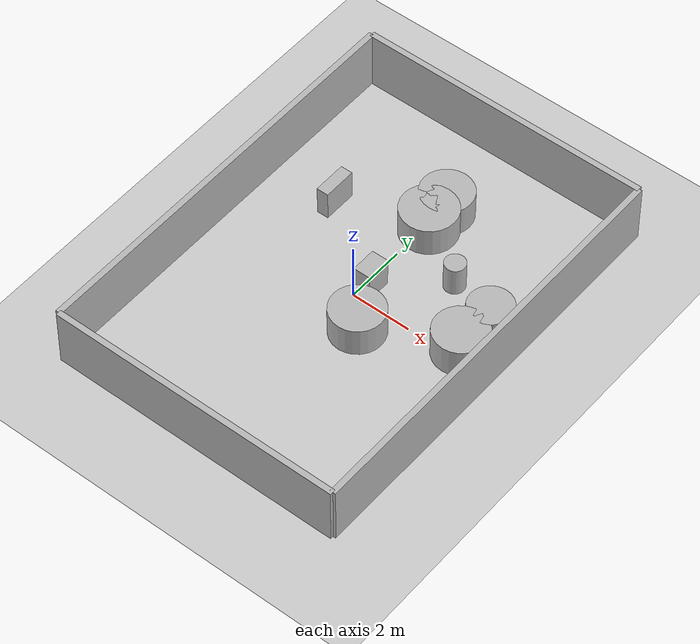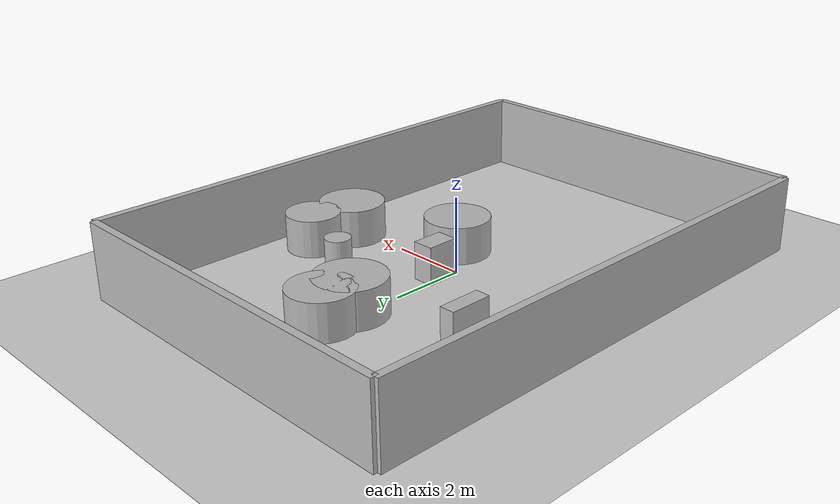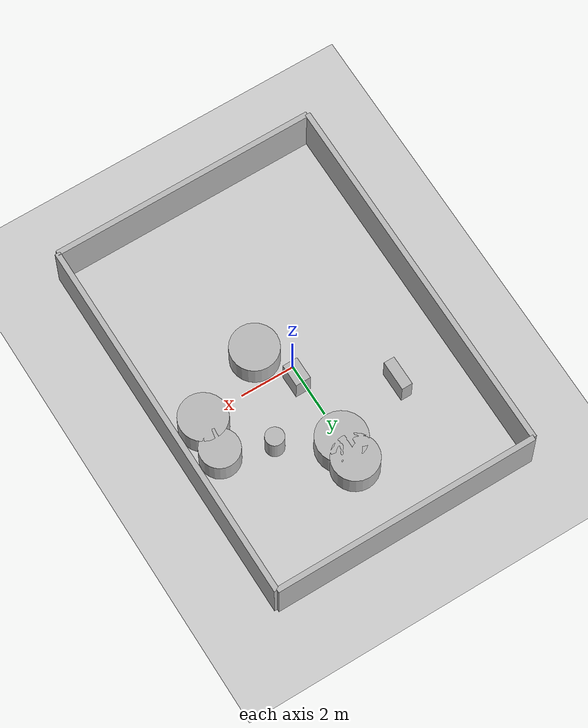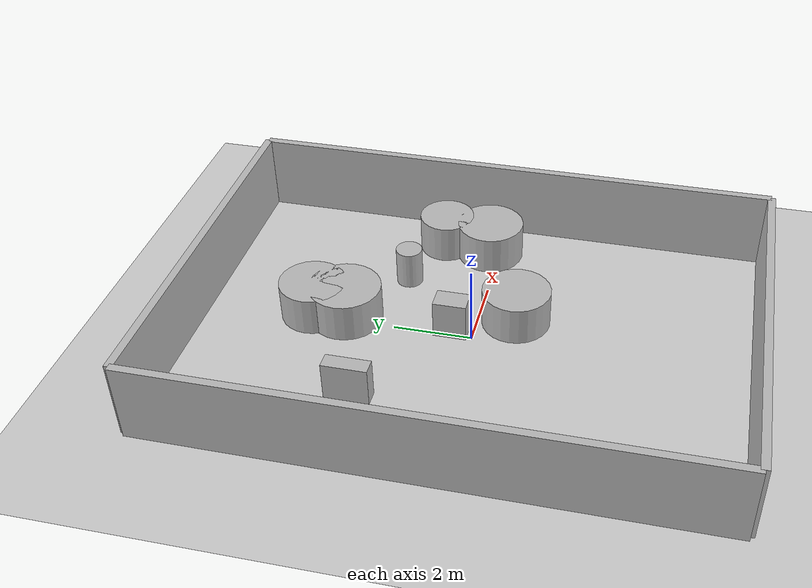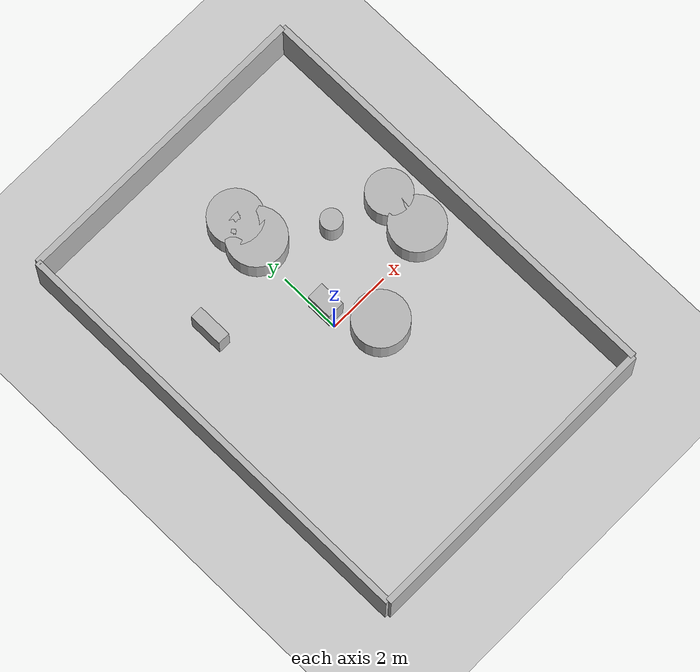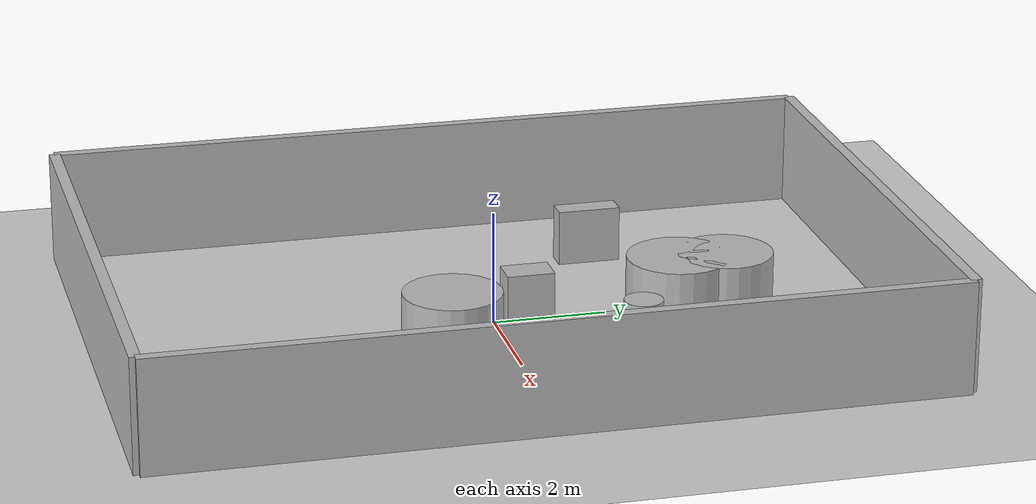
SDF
<?xml version="1.0"?>
<sdf version="1.6">
  <world name="env_51">

    <include><uri>model://ground_plane</uri></include>
    <include><uri>model://sun</uri></include>

    <!-- WALLS -->
    <model name="wall_north"><static>true</static><pose>0 6.922627839972932 1 0 0 0</pose>
      <link name="link"><collision name="collision">
        <geometry><box><size>9.818066960290988 0.2 2</size></box></geometry>
      </collision><visual name="visual">
        <geometry><box><size>9.818066960290988 0.2 2</size></box></geometry>
      </visual></link>
    </model>

    <model name="wall_south"><static>true</static><pose>0 -6.922627839972932 1 0 0 0</pose>
      <link name="link"><collision name="collision">
        <geometry><box><size>9.818066960290988 0.2 2</size></box></geometry>
      </collision><visual name="visual">
        <geometry><box><size>9.818066960290988 0.2 2</size></box></geometry>
      </visual></link>
    </model>

    <model name="wall_east"><static>true</static><pose>4.909033480145494 0 1 0 0 1.57</pose>
      <link name="link"><collision name="collision">
        <geometry><box><size>13.845255679945865 0.2 2</size></box></geometry>
      </collision><visual name="visual">
        <geometry><box><size>13.845255679945865 0.2 2</size></box></geometry>
      </visual></link>
    </model>

    <model name="wall_west"><static>true</static><pose>-4.909033480145494 0 1 0 0 1.57</pose>
      <link name="link"><collision name="collision">
        <geometry><box><size>13.845255679945865 0.2 2</size></box></geometry>
      </collision><visual name="visual">
        <geometry><box><size>13.845255679945865 0.2 2</size></box></geometry>
      </visual></link>
    </model>

    <!-- SENSOR -->

    <model name="lidar_sensor">
      <static>true</static>
      <pose>-1.409722551111798 6.266401147567407 0.4 0 0 0</pose>
      <link name="link">
        <sensor name="lidar" type="ray">
          <pose>0 0 0 0 0 0</pose>
          <visualize>true</visualize>
          <always_on>true</always_on>
          <update_rate>10</update_rate>
          <ray>
            <scan><horizontal>
              <samples>180</samples>
              <resolution>1</resolution>
              <min_angle>-3.14159</min_angle>
              <max_angle>3.14159</max_angle>
            </horizontal></scan>
            <range><min>0.15</min><max>20.0</max><resolution>0.01</resolution></range>
          </ray>
          <plugin name="lidar_plugin" filename="liblidar_plugin.so"/>
        </sensor>
      </link>
    </model>

    <!-- OBSTACLES -->

    <model name="obstacle_0">
      <static>true</static>
      <pose>3.7570817686236087 1.5088271121284675 0.5 0 0 0</pose>
      <link name="link">
        <collision name="collision">
          <geometry><cylinder><radius>0.72</radius><length>1.0</length></cylinder></geometry>
        </collision>
        <visual name="visual">
          <geometry><cylinder><radius>0.72</radius><length>1.0</length></cylinder></geometry>
        </visual>
      </link>
    </model>

    <model name="obstacle_1">
      <static>true</static>
      <pose>0.90837639617114 -0.9421562465178939 0.5 0 0 0</pose>
      <link name="link">
        <collision name="collision">
          <geometry><cylinder><radius>0.87</radius><length>1.0</length></cylinder></geometry>
        </collision>
        <visual name="visual">
          <geometry><cylinder><radius>0.87</radius><length>1.0</length></cylinder></geometry>
        </visual>
      </link>
    </model>

    <model name="obstacle_2">
      <static>true</static>
      <pose>3.648068867420207 0.2822842864038311 0.5 0 0 0</pose>
      <link name="link">
        <collision name="collision">
          <geometry><cylinder><radius>0.87</radius><length>1.0</length></cylinder></geometry>
        </collision>
        <visual name="visual">
          <geometry><cylinder><radius>0.87</radius><length>1.0</length></cylinder></geometry>
        </visual>
      </link>
    </model>

    <model name="obstacle_3">
      <static>true</static>
      <pose>-2.627628437669589 2.3722018508667784 0.5 0 0 0</pose>
      <link name="link">
        <collision name="collision">
          <geometry><box><size>0.4 1.12 1.0</size></box></geometry>
        </collision>
        <visual name="visual">
          <geometry><box><size>0.4 1.12 1.0</size></box></geometry>
        </visual>
      </link>
    </model>

    <model name="obstacle_4">
      <static>true</static>
      <pose>0.19347573846666233 0.5521261135665396 0.5 0 0 0</pose>
      <link name="link">
        <collision name="collision">
          <geometry><box><size>0.56 0.84 1.0</size></box></geometry>
        </collision>
        <visual name="visual">
          <geometry><box><size>0.56 0.84 1.0</size></box></geometry>
        </visual>
      </link>
    </model>

    <model name="obstacle_5">
      <static>true</static>
      <pose>0.15553036988552726 3.2818156104020613 0.5 0 0 0</pose>
      <link name="link">
        <collision name="collision">
          <geometry><cylinder><radius>0.92</radius><length>1.0</length></cylinder></geometry>
        </collision>
        <visual name="visual">
          <geometry><cylinder><radius>0.92</radius><length>1.0</length></cylinder></geometry>
        </visual>
      </link>
    </model>

    <model name="obstacle_6">
      <static>true</static>
      <pose>0.15361051903854772 4.124897962421517 0.5 0 0 0</pose>
      <link name="link">
        <collision name="collision">
          <geometry><cylinder><radius>0.85</radius><length>1.0</length></cylinder></geometry>
        </collision>
        <visual name="visual">
          <geometry><cylinder><radius>0.85</radius><length>1.0</length></cylinder></geometry>
        </visual>
      </link>
    </model>

    <model name="obstacle_7">
      <static>true</static>
      <pose>2.0140560842078523 2.1163514715618703 0.5 0 0 0</pose>
      <link name="link">
        <collision name="collision">
          <geometry><cylinder><radius>0.34</radius><length>1.0</length></cylinder></geometry>
        </collision>
        <visual name="visual">
          <geometry><cylinder><radius>0.34</radius><length>1.0</length></cylinder></geometry>
        </visual>
      </link>
    </model>

  </world>
</sdf>
